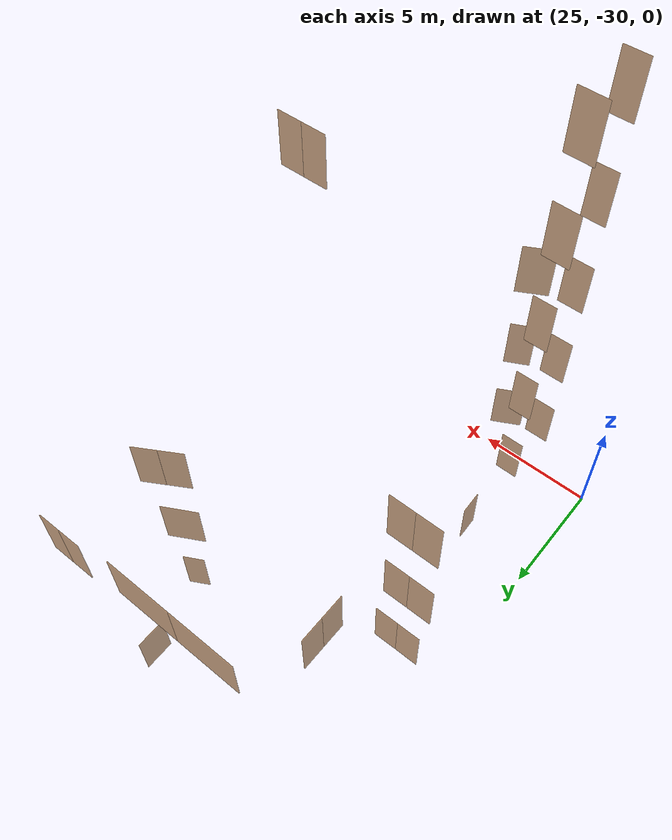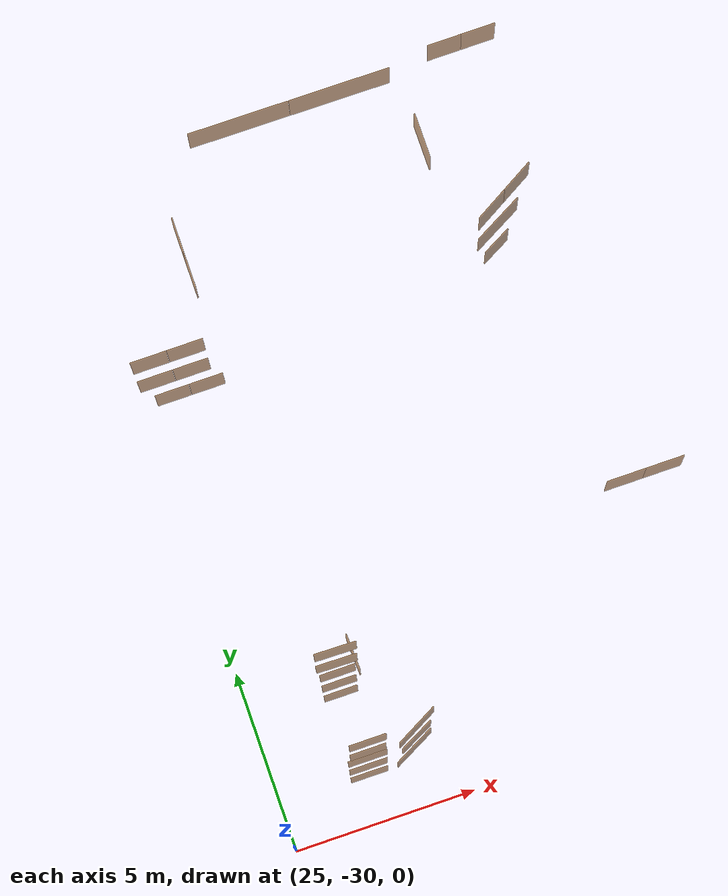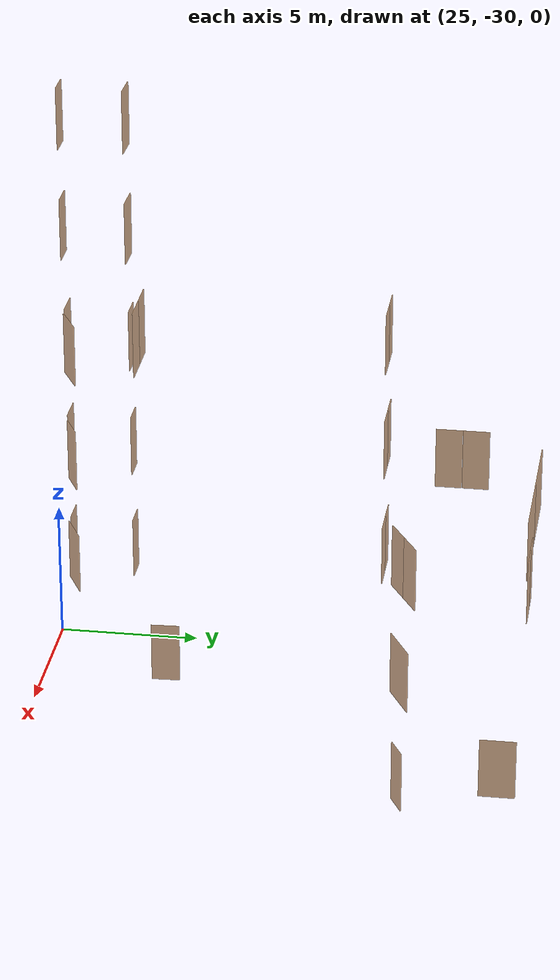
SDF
<sdf version="1.7">
 <world name="sim_world">
  <model name="Snull1">
   <pose>34.31579733412984 -13.190942015457559 0.0 0 0 -1.5647744371355659</pose>
   <link name="right">
    <pose>0 0 1.11 0 0 0</pose>
    <visual name="right_visual">
     <geometry><box><size>1.254855103408931 0.03 2.2</size></box></geometry>
     <material>
      <ambient>0.5 0.25 0 0.6</ambient>
      <diffuse>0.5 0.25 0 0.6</diffuse>
      <pbr><metal><metalness>0.0</metalness></metal></pbr>
     </material>
    </visual>
    <collision name="right_collision">
     <geometry><box><size>1.254855103408931 0.03 2.2</size></box></geometry>
     <surface><contact><collide_bitmask>0x02</collide_bitmask></contact></surface>
    </collision>
    <inertial>
     <mass>50.0</mass>
     <inertia><ixx>20.17041666666667</ixx><iyy>26.72775554396433</iyy><izz>6.564838877297662</izz></inertia>
    </inertial>
   </link>
   <joint name="right_joint" type="revolute">
    <parent>world</parent>
    <child>right</child>
    <axis><xyz>0 0 1</xyz><limit><lower>0</lower><upper>1.57</upper></limit></axis>
    <pose>0.6324275517044655 0 0 0 0 0</pose>
   </joint>
   <plugin name="register_component" filename="libregister_component.so">
    <component name="Door">
     <v_max_door>0.5</v_max_door>
     <a_max_door>0.3</a_max_door>
     <a_nom_door>0.15</a_nom_door>
     <dx_min_door>0.01</dx_min_door>
     <f_max_door>500.0</f_max_door>
     <ros_interface>true</ros_interface>
     <door name="Snull1" type="SwingDoor" left_joint_name="empty_joint" right_joint_name="right_joint"/>
    </component>
   </plugin>
  </model>
  <model name="Snull10">
   <pose>35.266232311540875 -16.49999999999999 0.0 0 0 -2.654102844831569</pose>
   <link name="right">
    <pose>0 0 1.11 0 0 0</pose>
    <visual name="right_visual">
     <geometry><box><size>0.8774159202349445 0.03 2.2</size></box></geometry>
     <material>
      <ambient>0.5 0.25 0 0.6</ambient>
      <diffuse>0.5 0.25 0 0.6</diffuse>
      <pbr><metal><metalness>0.0</metalness></metal></pbr>
     </material>
    </visual>
    <collision name="right_collision">
     <geometry><box><size>0.8774159202349445 0.03 2.2</size></box></geometry>
     <surface><contact><collide_bitmask>0x02</collide_bitmask></contact></surface>
    </collision>
    <inertial>
     <mass>50.0</mass>
     <inertia><ixx>20.17041666666667</ixx><iyy>23.374411237840565</iyy><izz>3.211494571173894</izz></inertia>
    </inertial>
   </link>
   <joint name="right_joint" type="revolute">
    <parent>world</parent>
    <child>right</child>
    <axis><xyz>0 0 -1</xyz><limit><lower>0</lower><upper>1.57</upper></limit></axis>
    <pose>0.44370796011747227 0 0 0 0 0</pose>
   </joint>
   <plugin name="register_component" filename="libregister_component.so">
    <component name="Door">
     <v_max_door>0.5</v_max_door>
     <a_max_door>0.3</a_max_door>
     <a_nom_door>0.15</a_nom_door>
     <dx_min_door>0.01</dx_min_door>
     <f_max_door>500.0</f_max_door>
     <ros_interface>true</ros_interface>
     <door name="Snull10" type="SwingDoor" left_joint_name="empty_joint" right_joint_name="right_joint"/>
    </component>
   </plugin>
  </model>
  <model name="Snull13">
   <pose>28.110629877160868 -25.59315610648544 0.0 0 0 -1.5295418897094035</pose>
   <link name="right">
    <pose>0 0 1.11 0 0 0</pose>
    <visual name="right_visual">
     <geometry><box><size>1.0111802562463839 0.03 2.2</size></box></geometry>
     <material>
      <ambient>0.5 0.25 0 0.6</ambient>
      <diffuse>0.5 0.25 0 0.6</diffuse>
      <pbr><metal><metalness>0.0</metalness></metal></pbr>
     </material>
    </visual>
    <collision name="right_collision">
     <geometry><box><size>1.0111802562463839 0.03 2.2</size></box></geometry>
     <surface><contact><collide_bitmask>0x02</collide_bitmask></contact></surface>
    </collision>
    <inertial>
     <mass>50.0</mass>
     <inertia><ixx>20.17041666666667</ixx><iyy>24.4270229609271</iyy><izz>4.2641062942604275</izz></inertia>
    </inertial>
   </link>
   <joint name="right_joint" type="revolute">
    <parent>world</parent>
    <child>right</child>
    <axis><xyz>0 0 -1</xyz><limit><lower>0</lower><upper>1.57</upper></limit></axis>
    <pose>0.5105901281231919 0 0 0 0 0</pose>
   </joint>
   <plugin name="register_component" filename="libregister_component.so">
    <component name="Door">
     <v_max_door>0.5</v_max_door>
     <a_max_door>0.3</a_max_door>
     <a_nom_door>0.15</a_nom_door>
     <dx_min_door>0.01</dx_min_door>
     <f_max_door>500.0</f_max_door>
     <ros_interface>true</ros_interface>
     <door name="Snull13" type="SwingDoor" left_joint_name="empty_joint" right_joint_name="right_joint"/>
    </component>
   </plugin>
  </model>
  <model name="0null10">
   <pose>35.248963895008 -16.471735802561312 4.0 0 0 -2.6490270736152604</pose>
   <link name="right">
    <pose>0 0 1.11 0 0 0</pose>
    <visual name="right_visual">
     <geometry><box><size>1.4880229338693765 0.03 2.2</size></box></geometry>
     <material>
      <ambient>0.5 0.25 0 0.6</ambient>
      <diffuse>0.5 0.25 0 0.6</diffuse>
      <pbr><metal><metalness>0.0</metalness></metal></pbr>
     </material>
    </visual>
    <collision name="right_collision">
     <geometry><box><size>1.4880229338693765 0.03 2.2</size></box></geometry>
     <surface><contact><collide_bitmask>0x02</collide_bitmask></contact></surface>
    </collision>
    <inertial>
     <mass>50.0</mass>
     <inertia><ixx>20.17041666666667</ixx><iyy>29.39255104883845</iyy><izz>9.22963438217178</izz></inertia>
    </inertial>
   </link>
   <joint name="right_joint" type="revolute">
    <parent>world</parent>
    <child>right</child>
    <axis><xyz>0 0 -1</xyz><limit><lower>0</lower><upper>1.57</upper></limit></axis>
    <pose>0.7490114669346882 0 0 0 0 0</pose>
   </joint>
   <plugin name="register_component" filename="libregister_component.so">
    <component name="Door">
     <v_max_door>0.5</v_max_door>
     <a_max_door>0.3</a_max_door>
     <a_nom_door>0.15</a_nom_door>
     <dx_min_door>0.01</dx_min_door>
     <f_max_door>500.0</f_max_door>
     <ros_interface>true</ros_interface>
     <door name="0null10" type="SwingDoor" left_joint_name="empty_joint" right_joint_name="right_joint"/>
    </component>
   </plugin>
  </model>
  <model name="0null21">
   <pose>26.287103759847646 -17.968599484747777 4.0 0 0 0.0</pose>
   <link name="right">
    <pose>0.466013889407459 0 1.11 0 0 0</pose>
    <visual name="right_visual">
     <geometry><box><size>0.922027778814918 0.03 2.2</size></box></geometry>
     <material>
      <ambient>0.5 0.25 0 0.6</ambient>
      <diffuse>0.5 0.25 0 0.6</diffuse>
      <pbr><metal><metalness>0.0</metalness></metal></pbr>
     </material>
    </visual>
    <collision name="right_collision">
     <geometry><box><size>0.922027778814918 0.03 2.2</size></box></geometry>
     <surface><contact><collide_bitmask>0x02</collide_bitmask></contact></surface>
    </collision>
    <inertial>
     <mass>50.0</mass>
     <inertia><ixx>20.17041666666667</ixx><iyy>23.70889677044322</iyy><izz>3.545980103776548</izz></inertia>
    </inertial>
   </link>
   <joint name="right_joint" type="revolute">
    <parent>world</parent>
    <child>right</child>
    <axis><xyz>0 0 -1</xyz><limit><lower>0</lower><upper>1.57</upper></limit></axis>
    <pose>0.466013889407459 0 0 0 0 0</pose>
   </joint>
   <link name="left">
    <pose>-0.466013889407459 0 1.11 0 0 0</pose>
    <visual name="left_visual">
     <geometry><box><size>0.922027778814918 0.03 2.2</size></box></geometry>
     <material>
      <ambient>0.5 0.25 0 0.6</ambient>
      <diffuse>0.5 0.25 0 0.6</diffuse>
      <pbr><metal><metalness>0.0</metalness></metal></pbr>
     </material>
    </visual>
    <collision name="left_collision">
     <geometry><box><size>0.922027778814918 0.03 2.2</size></box></geometry>
     <surface><contact><collide_bitmask>0x02</collide_bitmask></contact></surface>
    </collision>
    <inertial>
     <mass>50.0</mass>
     <inertia><ixx>20.17041666666667</ixx><iyy>23.70889677044322</iyy><izz>3.545980103776548</izz></inertia>
    </inertial>
   </link>
   <joint name="left_joint" type="revolute">
    <parent>world</parent>
    <child>left</child>
    <axis><xyz>0 0 -1</xyz><limit><lower>-1.57</lower><upper>0</upper></limit></axis>
    <pose>-0.466013889407459 0 0 0 0 0</pose>
   </joint>
   <plugin name="register_component" filename="libregister_component.so">
    <component name="Door">
     <v_max_door>0.5</v_max_door>
     <a_max_door>0.3</a_max_door>
     <a_nom_door>0.15</a_nom_door>
     <dx_min_door>0.01</dx_min_door>
     <f_max_door>500.0</f_max_door>
     <ros_interface>true</ros_interface>
     <door name="0null21" type="DoubleSwingDoor" left_joint_name="left_joint" right_joint_name="right_joint"/>
    </component>
   </plugin>
  </model>
  <model name="0null25">
   <pose>27.425120412201753 -26.721129074412858 4.0 0 0 0.0</pose>
   <link name="right">
    <pose>0 0 1.11 0 0 0</pose>
    <visual name="right_visual">
     <geometry><box><size>0.9119280887129884 0.03 2.2</size></box></geometry>
     <material>
      <ambient>0.5 0.25 0 0.6</ambient>
      <diffuse>0.5 0.25 0 0.6</diffuse>
      <pbr><metal><metalness>0.0</metalness></metal></pbr>
     </material>
    </visual>
    <collision name="right_collision">
     <geometry><box><size>0.9119280887129884 0.03 2.2</size></box></geometry>
     <surface><contact><collide_bitmask>0x02</collide_bitmask></contact></surface>
    </collision>
    <inertial>
     <mass>50.0</mass>
     <inertia><ixx>20.17041666666667</ixx><iyy>23.631720162432188</iyy><izz>3.468803495765517</izz></inertia>
    </inertial>
   </link>
   <joint name="right_joint" type="revolute">
    <parent>world</parent>
    <child>right</child>
    <axis><xyz>0 0 -1</xyz><limit><lower>0</lower><upper>1.57</upper></limit></axis>
    <pose>0.4609640443564942 0 0 0 0 0</pose>
   </joint>
   <plugin name="register_component" filename="libregister_component.so">
    <component name="Door">
     <v_max_door>0.5</v_max_door>
     <a_max_door>0.3</a_max_door>
     <a_nom_door>0.15</a_nom_door>
     <dx_min_door>0.01</dx_min_door>
     <f_max_door>500.0</f_max_door>
     <ros_interface>true</ros_interface>
     <door name="0null25" type="SwingDoor" left_joint_name="empty_joint" right_joint_name="right_joint"/>
    </component>
   </plugin>
  </model>
  <model name="0null26">
   <pose>27.4428928798118 -28.9351080909532 4.0 0 0 0.0</pose>
   <link name="right">
    <pose>0 0 1.11 0 0 0</pose>
    <visual name="right_visual">
     <geometry><box><size>1.0012384721651786 0.03 2.2</size></box></geometry>
     <material>
      <ambient>0.5 0.25 0 0.6</ambient>
      <diffuse>0.5 0.25 0 0.6</diffuse>
      <pbr><metal><metalness>0.0</metalness></metal></pbr>
     </material>
    </visual>
    <collision name="right_collision">
     <geometry><box><size>1.0012384721651786 0.03 2.2</size></box></geometry>
     <surface><contact><collide_bitmask>0x02</collide_bitmask></contact></surface>
    </collision>
    <inertial>
     <mass>50.0</mass>
     <inertia><ixx>20.17041666666667</ixx><iyy>24.34366032559859</iyy><izz>4.180743658931921</izz></inertia>
    </inertial>
   </link>
   <joint name="right_joint" type="revolute">
    <parent>world</parent>
    <child>right</child>
    <axis><xyz>0 0 1</xyz><limit><lower>0</lower><upper>1.57</upper></limit></axis>
    <pose>0.5056192360825893 0 0 0 0 0</pose>
   </joint>
   <plugin name="register_component" filename="libregister_component.so">
    <component name="Door">
     <v_max_door>0.5</v_max_door>
     <a_max_door>0.3</a_max_door>
     <a_nom_door>0.15</a_nom_door>
     <dx_min_door>0.01</dx_min_door>
     <f_max_door>500.0</f_max_door>
     <ros_interface>true</ros_interface>
     <door name="0null26" type="SwingDoor" left_joint_name="empty_joint" right_joint_name="right_joint"/>
    </component>
   </plugin>
  </model>
  <model name="nullb1">
   <pose>28.75736474629427 -28.66306985774557 4.0 0 0 0.4795310712493235</pose>
   <link name="right">
    <pose>0 0 1.11 0 0 0</pose>
    <visual name="right_visual">
     <geometry><box><size>1.2273863627023087 0.03 2.2</size></box></geometry>
     <material>
      <ambient>0.5 0.25 0 0.6</ambient>
      <diffuse>0.5 0.25 0 0.6</diffuse>
      <pbr><metal><metalness>0.0</metalness></metal></pbr>
     </material>
    </visual>
    <collision name="right_collision">
     <geometry><box><size>1.2273863627023087 0.03 2.2</size></box></geometry>
     <surface><contact><collide_bitmask>0x02</collide_bitmask></contact></surface>
    </collision>
    <inertial>
     <mass>50.0</mass>
     <inertia><ixx>20.17041666666667</ixx><iyy>26.443655347281688</iyy><izz>6.280738680615014</izz></inertia>
    </inertial>
   </link>
   <joint name="right_joint" type="revolute">
    <parent>world</parent>
    <child>right</child>
    <axis><xyz>0 0 -1</xyz><limit><lower>0</lower><upper>1.57</upper></limit></axis>
    <pose>0.6186931813511544 0 0 0 0 0</pose>
   </joint>
   <plugin name="register_component" filename="libregister_component.so">
    <component name="Door">
     <v_max_door>0.5</v_max_door>
     <a_max_door>0.3</a_max_door>
     <a_nom_door>0.15</a_nom_door>
     <dx_min_door>0.01</dx_min_door>
     <f_max_door>500.0</f_max_door>
     <ros_interface>true</ros_interface>
     <door name="nullb1" type="SwingDoor" left_joint_name="empty_joint" right_joint_name="right_joint"/>
    </component>
   </plugin>
  </model>
  <model name="1null10">
   <pose>35.38498301161182 -16.359892469103524 8.0 0 0 -2.6214980729820914</pose>
   <link name="right">
    <pose>0.47606565224283276 0 1.11 0 0 0</pose>
    <visual name="right_visual">
     <geometry><box><size>0.9421313044856655 0.03 2.2</size></box></geometry>
     <material>
      <ambient>0.5 0.25 0 0.6</ambient>
      <diffuse>0.5 0.25 0 0.6</diffuse>
      <pbr><metal><metalness>0.0</metalness></metal></pbr>
     </material>
    </visual>
    <collision name="right_collision">
     <geometry><box><size>0.9421313044856655 0.03 2.2</size></box></geometry>
     <surface><contact><collide_bitmask>0x02</collide_bitmask></contact></surface>
    </collision>
    <inertial>
     <mass>50.0</mass>
     <inertia><ixx>20.17041666666667</ixx><iyy>23.865047478716097</iyy><izz>3.7021308120494245</izz></inertia>
    </inertial>
   </link>
   <joint name="right_joint" type="revolute">
    <parent>world</parent>
    <child>right</child>
    <axis><xyz>0 0 1</xyz><limit><lower>0</lower><upper>1.57</upper></limit></axis>
    <pose>0.47606565224283276 0 0 0 0 0</pose>
   </joint>
   <link name="left">
    <pose>-0.47606565224283276 0 1.11 0 0 0</pose>
    <visual name="left_visual">
     <geometry><box><size>0.9421313044856655 0.03 2.2</size></box></geometry>
     <material>
      <ambient>0.5 0.25 0 0.6</ambient>
      <diffuse>0.5 0.25 0 0.6</diffuse>
      <pbr><metal><metalness>0.0</metalness></metal></pbr>
     </material>
    </visual>
    <collision name="left_collision">
     <geometry><box><size>0.9421313044856655 0.03 2.2</size></box></geometry>
     <surface><contact><collide_bitmask>0x02</collide_bitmask></contact></surface>
    </collision>
    <inertial>
     <mass>50.0</mass>
     <inertia><ixx>20.17041666666667</ixx><iyy>23.865047478716097</iyy><izz>3.7021308120494245</izz></inertia>
    </inertial>
   </link>
   <joint name="left_joint" type="revolute">
    <parent>world</parent>
    <child>left</child>
    <axis><xyz>0 0 1</xyz><limit><lower>-1.57</lower><upper>0</upper></limit></axis>
    <pose>-0.47606565224283276 0 0 0 0 0</pose>
   </joint>
   <plugin name="register_component" filename="libregister_component.so">
    <component name="Door">
     <v_max_door>0.5</v_max_door>
     <a_max_door>0.3</a_max_door>
     <a_nom_door>0.15</a_nom_door>
     <dx_min_door>0.01</dx_min_door>
     <f_max_door>500.0</f_max_door>
     <ros_interface>true</ros_interface>
     <door name="1null10" type="DoubleSwingDoor" left_joint_name="left_joint" right_joint_name="right_joint"/>
    </component>
   </plugin>
  </model>
  <model name="1null21">
   <pose>26.004480454019323 -17.971362431393036 8.0 0 0 0.0</pose>
   <link name="right">
    <pose>0.47388268677892587 0 1.11 0 0 0</pose>
    <visual name="right_visual">
     <geometry><box><size>0.9377653735578517 0.03 2.2</size></box></geometry>
     <material>
      <ambient>0.5 0.25 0 0.6</ambient>
      <diffuse>0.5 0.25 0 0.6</diffuse>
      <pbr><metal><metalness>0.0</metalness></metal></pbr>
     </material>
    </visual>
    <collision name="right_collision">
     <geometry><box><size>0.9377653735578517 0.03 2.2</size></box></geometry>
     <surface><contact><collide_bitmask>0x02</collide_bitmask></contact></surface>
    </collision>
    <inertial>
     <mass>50.0</mass>
     <inertia><ixx>20.17041666666667</ixx><iyy>23.83084956601708</iyy><izz>3.6679328993504052</izz></inertia>
    </inertial>
   </link>
   <joint name="right_joint" type="revolute">
    <parent>world</parent>
    <child>right</child>
    <axis><xyz>0 0 -1</xyz><limit><lower>0</lower><upper>1.57</upper></limit></axis>
    <pose>0.47388268677892587 0 0 0 0 0</pose>
   </joint>
   <link name="left">
    <pose>-0.47388268677892587 0 1.11 0 0 0</pose>
    <visual name="left_visual">
     <geometry><box><size>0.9377653735578517 0.03 2.2</size></box></geometry>
     <material>
      <ambient>0.5 0.25 0 0.6</ambient>
      <diffuse>0.5 0.25 0 0.6</diffuse>
      <pbr><metal><metalness>0.0</metalness></metal></pbr>
     </material>
    </visual>
    <collision name="left_collision">
     <geometry><box><size>0.9377653735578517 0.03 2.2</size></box></geometry>
     <surface><contact><collide_bitmask>0x02</collide_bitmask></contact></surface>
    </collision>
    <inertial>
     <mass>50.0</mass>
     <inertia><ixx>20.17041666666667</ixx><iyy>23.83084956601708</iyy><izz>3.6679328993504052</izz></inertia>
    </inertial>
   </link>
   <joint name="left_joint" type="revolute">
    <parent>world</parent>
    <child>left</child>
    <axis><xyz>0 0 -1</xyz><limit><lower>-1.57</lower><upper>0</upper></limit></axis>
    <pose>-0.47388268677892587 0 0 0 0 0</pose>
   </joint>
   <plugin name="register_component" filename="libregister_component.so">
    <component name="Door">
     <v_max_door>0.5</v_max_door>
     <a_max_door>0.3</a_max_door>
     <a_nom_door>0.15</a_nom_door>
     <dx_min_door>0.01</dx_min_door>
     <f_max_door>500.0</f_max_door>
     <ros_interface>true</ros_interface>
     <door name="1null21" type="DoubleSwingDoor" left_joint_name="left_joint" right_joint_name="right_joint"/>
    </component>
   </plugin>
  </model>
  <model name="1null25">
   <pose>27.425120412201753 -26.721129074412858 8.0 0 0 0.0</pose>
   <link name="right">
    <pose>0 0 1.11 0 0 0</pose>
    <visual name="right_visual">
     <geometry><box><size>0.9119280887129884 0.03 2.2</size></box></geometry>
     <material>
      <ambient>0.5 0.25 0 0.6</ambient>
      <diffuse>0.5 0.25 0 0.6</diffuse>
      <pbr><metal><metalness>0.0</metalness></metal></pbr>
     </material>
    </visual>
    <collision name="right_collision">
     <geometry><box><size>0.9119280887129884 0.03 2.2</size></box></geometry>
     <surface><contact><collide_bitmask>0x02</collide_bitmask></contact></surface>
    </collision>
    <inertial>
     <mass>50.0</mass>
     <inertia><ixx>20.17041666666667</ixx><iyy>23.631720162432188</iyy><izz>3.468803495765517</izz></inertia>
    </inertial>
   </link>
   <joint name="right_joint" type="revolute">
    <parent>world</parent>
    <child>right</child>
    <axis><xyz>0 0 -1</xyz><limit><lower>0</lower><upper>1.57</upper></limit></axis>
    <pose>0.4609640443564942 0 0 0 0 0</pose>
   </joint>
   <plugin name="register_component" filename="libregister_component.so">
    <component name="Door">
     <v_max_door>0.5</v_max_door>
     <a_max_door>0.3</a_max_door>
     <a_nom_door>0.15</a_nom_door>
     <dx_min_door>0.01</dx_min_door>
     <f_max_door>500.0</f_max_door>
     <ros_interface>true</ros_interface>
     <door name="1null25" type="SwingDoor" left_joint_name="empty_joint" right_joint_name="right_joint"/>
    </component>
   </plugin>
  </model>
  <model name="1null26">
   <pose>27.4428928798118 -28.9351080909532 8.0 0 0 0.0</pose>
   <link name="right">
    <pose>0 0 1.11 0 0 0</pose>
    <visual name="right_visual">
     <geometry><box><size>1.0012384721651786 0.03 2.2</size></box></geometry>
     <material>
      <ambient>0.5 0.25 0 0.6</ambient>
      <diffuse>0.5 0.25 0 0.6</diffuse>
      <pbr><metal><metalness>0.0</metalness></metal></pbr>
     </material>
    </visual>
    <collision name="right_collision">
     <geometry><box><size>1.0012384721651786 0.03 2.2</size></box></geometry>
     <surface><contact><collide_bitmask>0x02</collide_bitmask></contact></surface>
    </collision>
    <inertial>
     <mass>50.0</mass>
     <inertia><ixx>20.17041666666667</ixx><iyy>24.34366032559859</iyy><izz>4.180743658931921</izz></inertia>
    </inertial>
   </link>
   <joint name="right_joint" type="revolute">
    <parent>world</parent>
    <child>right</child>
    <axis><xyz>0 0 1</xyz><limit><lower>0</lower><upper>1.57</upper></limit></axis>
    <pose>0.5056192360825893 0 0 0 0 0</pose>
   </joint>
   <plugin name="register_component" filename="libregister_component.so">
    <component name="Door">
     <v_max_door>0.5</v_max_door>
     <a_max_door>0.3</a_max_door>
     <a_nom_door>0.15</a_nom_door>
     <dx_min_door>0.01</dx_min_door>
     <f_max_door>500.0</f_max_door>
     <ros_interface>true</ros_interface>
     <door name="1null26" type="SwingDoor" left_joint_name="empty_joint" right_joint_name="right_joint"/>
    </component>
   </plugin>
  </model>
  <model name="1null76">
   <pose>30.970223649329782 -12.445039764029413 8.0 0 0 3.1330323464274543</pose>
   <link name="right">
    <pose>1.346677799555242 0 1.11 0 0 0</pose>
    <visual name="right_visual">
     <geometry><box><size>2.683355599110484 0.03 2.2</size></box></geometry>
     <material>
      <ambient>0.5 0.25 0 0.6</ambient>
      <diffuse>0.5 0.25 0 0.6</diffuse>
      <pbr><metal><metalness>0.0</metalness></metal></pbr>
     </material>
    </visual>
    <collision name="right_collision">
     <geometry><box><size>2.683355599110484 0.03 2.2</size></box></geometry>
     <surface><contact><collide_bitmask>0x02</collide_bitmask></contact></surface>
    </collision>
    <inertial>
     <mass>50.0</mass>
     <inertia><ixx>20.17041666666667</ixx><iyy>50.16832196365661</iyy><izz>30.005405296989938</izz></inertia>
    </inertial>
   </link>
   <joint name="right_joint" type="prismatic">
    <parent>world</parent>
    <child>right</child>
    <axis>
     <xyz>1 0 0</xyz>
     <limit><lower>0.0</lower><upper>2.693355599110484</upper><effort>500.0</effort></limit>
    </axis>
   </joint>
   <link name="left">
    <pose>-1.346677799555242 0 1.11 0 0 0</pose>
    <visual name="left_visual">
     <geometry><box><size>2.683355599110484 0.03 2.2</size></box></geometry>
     <material>
      <ambient>0.5 0.25 0 0.6</ambient>
      <diffuse>0.5 0.25 0 0.6</diffuse>
      <pbr><metal><metalness>0.0</metalness></metal></pbr>
     </material>
    </visual>
    <collision name="left_collision">
     <geometry><box><size>2.683355599110484 0.03 2.2</size></box></geometry>
     <surface><contact><collide_bitmask>0x02</collide_bitmask></contact></surface>
    </collision>
    <inertial>
     <mass>50.0</mass>
     <inertia><ixx>20.17041666666667</ixx><iyy>50.16832196365661</iyy><izz>30.005405296989938</izz></inertia>
    </inertial>
   </link>
   <joint name="left_joint" type="prismatic">
    <parent>world</parent>
    <child>left</child>
    <axis>
     <xyz>1 0 0</xyz>
     <limit><lower>-2.693355599110484</lower><upper>0.0</upper><effort>500.0</effort></limit>
    </axis>
   </joint>
   <plugin name="register_component" filename="libregister_component.so">
    <component name="Door">
     <v_max_door>0.2</v_max_door>
     <a_max_door>0.2</a_max_door>
     <a_nom_door>0.08</a_nom_door>
     <dx_min_door>0.001</dx_min_door>
     <f_max_door>100.0</f_max_door>
     <ros_interface>true</ros_interface>
     <door name="1null76" type="DoubleSlidingDoor" left_joint_name="left_joint" right_joint_name="right_joint"/>
    </component>
   </plugin>
  </model>
  <model name="1ull77">
   <pose>35.65018855243996 -12.253967068662948 8.0 0 0 0.0</pose>
   <link name="right">
    <pose>0.4535152895493404 0 1.11 0 0 0</pose>
    <visual name="right_visual">
     <geometry><box><size>0.8970305790986808 0.03 2.2</size></box></geometry>
     <material>
      <ambient>0.5 0.25 0 0.6</ambient>
      <diffuse>0.5 0.25 0 0.6</diffuse>
      <pbr><metal><metalness>0.0</metalness></metal></pbr>
     </material>
    </visual>
    <collision name="right_collision">
     <geometry><box><size>0.8970305790986808 0.03 2.2</size></box></geometry>
     <surface><contact><collide_bitmask>0x02</collide_bitmask></contact></surface>
    </collision>
    <inertial>
     <mass>50.0</mass>
     <inertia><ixx>20.17041666666667</ixx><iyy>23.519432749325482</iyy><izz>3.356516082658811</izz></inertia>
    </inertial>
   </link>
   <joint name="right_joint" type="revolute">
    <parent>world</parent>
    <child>right</child>
    <axis><xyz>0 0 -1</xyz><limit><lower>0</lower><upper>1.57</upper></limit></axis>
    <pose>0.4535152895493404 0 0 0 0 0</pose>
   </joint>
   <link name="left">
    <pose>-0.4535152895493404 0 1.11 0 0 0</pose>
    <visual name="left_visual">
     <geometry><box><size>0.8970305790986808 0.03 2.2</size></box></geometry>
     <material>
      <ambient>0.5 0.25 0 0.6</ambient>
      <diffuse>0.5 0.25 0 0.6</diffuse>
      <pbr><metal><metalness>0.0</metalness></metal></pbr>
     </material>
    </visual>
    <collision name="left_collision">
     <geometry><box><size>0.8970305790986808 0.03 2.2</size></box></geometry>
     <surface><contact><collide_bitmask>0x02</collide_bitmask></contact></surface>
    </collision>
    <inertial>
     <mass>50.0</mass>
     <inertia><ixx>20.17041666666667</ixx><iyy>23.519432749325482</iyy><izz>3.356516082658811</izz></inertia>
    </inertial>
   </link>
   <joint name="left_joint" type="revolute">
    <parent>world</parent>
    <child>left</child>
    <axis><xyz>0 0 -1</xyz><limit><lower>-1.57</lower><upper>0</upper></limit></axis>
    <pose>-0.4535152895493404 0 0 0 0 0</pose>
   </joint>
   <plugin name="register_component" filename="libregister_component.so">
    <component name="Door">
     <v_max_door>0.5</v_max_door>
     <a_max_door>0.3</a_max_door>
     <a_nom_door>0.15</a_nom_door>
     <dx_min_door>0.01</dx_min_door>
     <f_max_door>500.0</f_max_door>
     <ros_interface>true</ros_interface>
     <door name="1ull77" type="DoubleSwingDoor" left_joint_name="left_joint" right_joint_name="right_joint"/>
    </component>
   </plugin>
  </model>
  <model name="1null85">
   <pose>27.22805510958442 -15.22516148303027 8.0 0 0 -1.5707963267948966</pose>
   <link name="right">
    <pose>0.4684221334428549 0 1.11 0 0 0</pose>
    <visual name="right_visual">
     <geometry><box><size>0.9268442668857098 0.03 2.2</size></box></geometry>
     <material>
      <ambient>0.5 0.25 0 0.6</ambient>
      <diffuse>0.5 0.25 0 0.6</diffuse>
      <pbr><metal><metalness>0.0</metalness></metal></pbr>
     </material>
    </visual>
    <collision name="right_collision">
     <geometry><box><size>0.9268442668857098 0.03 2.2</size></box></geometry>
     <surface><contact><collide_bitmask>0x02</collide_bitmask></contact></surface>
    </collision>
    <inertial>
     <mass>50.0</mass>
     <inertia><ixx>20.17041666666667</ixx><iyy>23.746001229412126</iyy><izz>3.5830845627454537</izz></inertia>
    </inertial>
   </link>
   <joint name="right_joint" type="revolute">
    <parent>world</parent>
    <child>right</child>
    <axis><xyz>0 0 -1</xyz><limit><lower>0</lower><upper>1.57</upper></limit></axis>
    <pose>0.4684221334428549 0 0 0 0 0</pose>
   </joint>
   <link name="left">
    <pose>-0.4684221334428549 0 1.11 0 0 0</pose>
    <visual name="left_visual">
     <geometry><box><size>0.9268442668857098 0.03 2.2</size></box></geometry>
     <material>
      <ambient>0.5 0.25 0 0.6</ambient>
      <diffuse>0.5 0.25 0 0.6</diffuse>
      <pbr><metal><metalness>0.0</metalness></metal></pbr>
     </material>
    </visual>
    <collision name="left_collision">
     <geometry><box><size>0.9268442668857098 0.03 2.2</size></box></geometry>
     <surface><contact><collide_bitmask>0x02</collide_bitmask></contact></surface>
    </collision>
    <inertial>
     <mass>50.0</mass>
     <inertia><ixx>20.17041666666667</ixx><iyy>23.746001229412126</iyy><izz>3.5830845627454537</izz></inertia>
    </inertial>
   </link>
   <joint name="left_joint" type="revolute">
    <parent>world</parent>
    <child>left</child>
    <axis><xyz>0 0 -1</xyz><limit><lower>-1.57</lower><upper>0</upper></limit></axis>
    <pose>-0.4684221334428549 0 0 0 0 0</pose>
   </joint>
   <plugin name="register_component" filename="libregister_component.so">
    <component name="Door">
     <v_max_door>0.5</v_max_door>
     <a_max_door>0.3</a_max_door>
     <a_nom_door>0.15</a_nom_door>
     <dx_min_door>0.01</dx_min_door>
     <f_max_door>500.0</f_max_door>
     <ros_interface>true</ros_interface>
     <door name="1null85" type="DoubleSwingDoor" left_joint_name="left_joint" right_joint_name="right_joint"/>
    </component>
   </plugin>
  </model>
  <model name="nullb3">
   <pose>28.82783855430682 -28.627487585408637 8.0 0 0 0.4724807734734819</pose>
   <link name="right">
    <pose>0 0 1.11 0 0 0</pose>
    <visual name="right_visual">
     <geometry><box><size>0.9956728817609504 0.03 2.2</size></box></geometry>
     <material>
      <ambient>0.5 0.25 0 0.6</ambient>
      <diffuse>0.5 0.25 0 0.6</diffuse>
      <pbr><metal><metalness>0.0</metalness></metal></pbr>
     </material>
    </visual>
    <collision name="right_collision">
     <geometry><box><size>0.9956728817609504 0.03 2.2</size></box></geometry>
     <surface><contact><collide_bitmask>0x02</collide_bitmask></contact></surface>
    </collision>
    <inertial>
     <mass>50.0</mass>
     <inertia><ixx>20.17041666666667</ixx><iyy>24.297352031142317</iyy><izz>4.134435364475648</izz></inertia>
    </inertial>
   </link>
   <joint name="right_joint" type="revolute">
    <parent>world</parent>
    <child>right</child>
    <axis><xyz>0 0 -1</xyz><limit><lower>0</lower><upper>1.57</upper></limit></axis>
    <pose>0.5028364408804752 0 0 0 0 0</pose>
   </joint>
   <plugin name="register_component" filename="libregister_component.so">
    <component name="Door">
     <v_max_door>0.5</v_max_door>
     <a_max_door>0.3</a_max_door>
     <a_nom_door>0.15</a_nom_door>
     <dx_min_door>0.01</dx_min_door>
     <f_max_door>500.0</f_max_door>
     <ros_interface>true</ros_interface>
     <door name="nullb3" type="SwingDoor" left_joint_name="empty_joint" right_joint_name="right_joint"/>
    </component>
   </plugin>
  </model>
  <model name="2null21">
   <pose>26.004480454019323 -17.971362431393036 12.0 0 0 0.0</pose>
   <link name="right">
    <pose>0.47388268677892587 0 1.11 0 0 0</pose>
    <visual name="right_visual">
     <geometry><box><size>0.9377653735578517 0.03 2.2</size></box></geometry>
     <material>
      <ambient>0.5 0.25 0 0.6</ambient>
      <diffuse>0.5 0.25 0 0.6</diffuse>
      <pbr><metal><metalness>0.0</metalness></metal></pbr>
     </material>
    </visual>
    <collision name="right_collision">
     <geometry><box><size>0.9377653735578517 0.03 2.2</size></box></geometry>
     <surface><contact><collide_bitmask>0x02</collide_bitmask></contact></surface>
    </collision>
    <inertial>
     <mass>50.0</mass>
     <inertia><ixx>20.17041666666667</ixx><iyy>23.83084956601708</iyy><izz>3.6679328993504052</izz></inertia>
    </inertial>
   </link>
   <joint name="right_joint" type="revolute">
    <parent>world</parent>
    <child>right</child>
    <axis><xyz>0 0 -1</xyz><limit><lower>0</lower><upper>1.57</upper></limit></axis>
    <pose>0.47388268677892587 0 0 0 0 0</pose>
   </joint>
   <link name="left">
    <pose>-0.47388268677892587 0 1.11 0 0 0</pose>
    <visual name="left_visual">
     <geometry><box><size>0.9377653735578517 0.03 2.2</size></box></geometry>
     <material>
      <ambient>0.5 0.25 0 0.6</ambient>
      <diffuse>0.5 0.25 0 0.6</diffuse>
      <pbr><metal><metalness>0.0</metalness></metal></pbr>
     </material>
    </visual>
    <collision name="left_collision">
     <geometry><box><size>0.9377653735578517 0.03 2.2</size></box></geometry>
     <surface><contact><collide_bitmask>0x02</collide_bitmask></contact></surface>
    </collision>
    <inertial>
     <mass>50.0</mass>
     <inertia><ixx>20.17041666666667</ixx><iyy>23.83084956601708</iyy><izz>3.6679328993504052</izz></inertia>
    </inertial>
   </link>
   <joint name="left_joint" type="revolute">
    <parent>world</parent>
    <child>left</child>
    <axis><xyz>0 0 -1</xyz><limit><lower>-1.57</lower><upper>0</upper></limit></axis>
    <pose>-0.47388268677892587 0 0 0 0 0</pose>
   </joint>
   <plugin name="register_component" filename="libregister_component.so">
    <component name="Door">
     <v_max_door>0.5</v_max_door>
     <a_max_door>0.3</a_max_door>
     <a_nom_door>0.15</a_nom_door>
     <dx_min_door>0.01</dx_min_door>
     <f_max_door>500.0</f_max_door>
     <ros_interface>true</ros_interface>
     <door name="2null21" type="DoubleSwingDoor" left_joint_name="left_joint" right_joint_name="right_joint"/>
    </component>
   </plugin>
  </model>
  <model name="2null25">
   <pose>27.425120412201753 -26.721129074412858 12.0 0 0 0.0</pose>
   <link name="right">
    <pose>0 0 1.11 0 0 0</pose>
    <visual name="right_visual">
     <geometry><box><size>0.9119280887129884 0.03 2.2</size></box></geometry>
     <material>
      <ambient>0.5 0.25 0 0.6</ambient>
      <diffuse>0.5 0.25 0 0.6</diffuse>
      <pbr><metal><metalness>0.0</metalness></metal></pbr>
     </material>
    </visual>
    <collision name="right_collision">
     <geometry><box><size>0.9119280887129884 0.03 2.2</size></box></geometry>
     <surface><contact><collide_bitmask>0x02</collide_bitmask></contact></surface>
    </collision>
    <inertial>
     <mass>50.0</mass>
     <inertia><ixx>20.17041666666667</ixx><iyy>23.631720162432188</iyy><izz>3.468803495765517</izz></inertia>
    </inertial>
   </link>
   <joint name="right_joint" type="revolute">
    <parent>world</parent>
    <child>right</child>
    <axis><xyz>0 0 -1</xyz><limit><lower>0</lower><upper>1.57</upper></limit></axis>
    <pose>0.4609640443564942 0 0 0 0 0</pose>
   </joint>
   <plugin name="register_component" filename="libregister_component.so">
    <component name="Door">
     <v_max_door>0.5</v_max_door>
     <a_max_door>0.3</a_max_door>
     <a_nom_door>0.15</a_nom_door>
     <dx_min_door>0.01</dx_min_door>
     <f_max_door>500.0</f_max_door>
     <ros_interface>true</ros_interface>
     <door name="2null25" type="SwingDoor" left_joint_name="empty_joint" right_joint_name="right_joint"/>
    </component>
   </plugin>
  </model>
  <model name="2null26">
   <pose>27.4428928798118 -28.9351080909532 12.0 0 0 0.0</pose>
   <link name="right">
    <pose>0 0 1.11 0 0 0</pose>
    <visual name="right_visual">
     <geometry><box><size>1.0012384721651786 0.03 2.2</size></box></geometry>
     <material>
      <ambient>0.5 0.25 0 0.6</ambient>
      <diffuse>0.5 0.25 0 0.6</diffuse>
      <pbr><metal><metalness>0.0</metalness></metal></pbr>
     </material>
    </visual>
    <collision name="right_collision">
     <geometry><box><size>1.0012384721651786 0.03 2.2</size></box></geometry>
     <surface><contact><collide_bitmask>0x02</collide_bitmask></contact></surface>
    </collision>
    <inertial>
     <mass>50.0</mass>
     <inertia><ixx>20.17041666666667</ixx><iyy>24.34366032559859</iyy><izz>4.180743658931921</izz></inertia>
    </inertial>
   </link>
   <joint name="right_joint" type="revolute">
    <parent>world</parent>
    <child>right</child>
    <axis><xyz>0 0 1</xyz><limit><lower>0</lower><upper>1.57</upper></limit></axis>
    <pose>0.5056192360825893 0 0 0 0 0</pose>
   </joint>
   <plugin name="register_component" filename="libregister_component.so">
    <component name="Door">
     <v_max_door>0.5</v_max_door>
     <a_max_door>0.3</a_max_door>
     <a_nom_door>0.15</a_nom_door>
     <dx_min_door>0.01</dx_min_door>
     <f_max_door>500.0</f_max_door>
     <ros_interface>true</ros_interface>
     <door name="2null26" type="SwingDoor" left_joint_name="empty_joint" right_joint_name="right_joint"/>
    </component>
   </plugin>
  </model>
  <model name="nullb4">
   <pose>28.81902699473545 -28.614475600194133 12.0 0 0 0.4921820266745037</pose>
   <link name="right">
    <pose>0 0 1.11 0 0 0</pose>
    <visual name="right_visual">
     <geometry><box><size>1.2131845446353848 0.03 2.2</size></box></geometry>
     <material>
      <ambient>0.5 0.25 0 0.6</ambient>
      <diffuse>0.5 0.25 0 0.6</diffuse>
      <pbr><metal><metalness>0.0</metalness></metal></pbr>
     </material>
    </visual>
    <collision name="right_collision">
     <geometry><box><size>1.2131845446353848 0.03 2.2</size></box></geometry>
     <surface><contact><collide_bitmask>0x02</collide_bitmask></contact></surface>
    </collision>
    <inertial>
     <mass>50.0</mass>
     <inertia><ixx>20.17041666666667</ixx><iyy>26.299236413925694</iyy><izz>6.136319747259025</izz></inertia>
    </inertial>
   </link>
   <joint name="right_joint" type="revolute">
    <parent>world</parent>
    <child>right</child>
    <axis><xyz>0 0 -1</xyz><limit><lower>0</lower><upper>1.57</upper></limit></axis>
    <pose>0.6115922723176924 0 0 0 0 0</pose>
   </joint>
   <plugin name="register_component" filename="libregister_component.so">
    <component name="Door">
     <v_max_door>0.5</v_max_door>
     <a_max_door>0.3</a_max_door>
     <a_nom_door>0.15</a_nom_door>
     <dx_min_door>0.01</dx_min_door>
     <f_max_door>500.0</f_max_door>
     <ros_interface>true</ros_interface>
     <door name="nullb4" type="SwingDoor" left_joint_name="empty_joint" right_joint_name="right_joint"/>
    </component>
   </plugin>
  </model>
  <model name="wx13null">
   <pose>35.86229219952851 -24.84380485190795 16.0 0 0 -4.194948292585065e-05</pose>
   <link name="right">
    <pose>0.4860070235862572 0 1.11 0 0 0</pose>
    <visual name="right_visual">
     <geometry><box><size>0.9620140471725144 0.03 2.2</size></box></geometry>
     <material>
      <ambient>0.5 0.25 0 0.6</ambient>
      <diffuse>0.5 0.25 0 0.6</diffuse>
      <pbr><metal><metalness>0.0</metalness></metal></pbr>
     </material>
    </visual>
    <collision name="right_collision">
     <geometry><box><size>0.9620140471725144 0.03 2.2</size></box></geometry>
     <surface><contact><collide_bitmask>0x02</collide_bitmask></contact></surface>
    </collision>
    <inertial>
     <mass>50.0</mass>
     <inertia><ixx>20.17041666666667</ixx><iyy>24.022795945655176</iyy><izz>3.8598792789885032</izz></inertia>
    </inertial>
   </link>
   <joint name="right_joint" type="revolute">
    <parent>world</parent>
    <child>right</child>
    <axis><xyz>0 0 -1</xyz><limit><lower>0</lower><upper>1.57</upper></limit></axis>
    <pose>0.4860070235862572 0 0 0 0 0</pose>
   </joint>
   <link name="left">
    <pose>-0.4860070235862572 0 1.11 0 0 0</pose>
    <visual name="left_visual">
     <geometry><box><size>0.9620140471725144 0.03 2.2</size></box></geometry>
     <material>
      <ambient>0.5 0.25 0 0.6</ambient>
      <diffuse>0.5 0.25 0 0.6</diffuse>
      <pbr><metal><metalness>0.0</metalness></metal></pbr>
     </material>
    </visual>
    <collision name="left_collision">
     <geometry><box><size>0.9620140471725144 0.03 2.2</size></box></geometry>
     <surface><contact><collide_bitmask>0x02</collide_bitmask></contact></surface>
    </collision>
    <inertial>
     <mass>50.0</mass>
     <inertia><ixx>20.17041666666667</ixx><iyy>24.022795945655176</iyy><izz>3.8598792789885032</izz></inertia>
    </inertial>
   </link>
   <joint name="left_joint" type="revolute">
    <parent>world</parent>
    <child>left</child>
    <axis><xyz>0 0 -1</xyz><limit><lower>-1.57</lower><upper>0</upper></limit></axis>
    <pose>-0.4860070235862572 0 0 0 0 0</pose>
   </joint>
   <plugin name="register_component" filename="libregister_component.so">
    <component name="Door">
     <v_max_door>0.5</v_max_door>
     <a_max_door>0.3</a_max_door>
     <a_nom_door>0.15</a_nom_door>
     <dx_min_door>0.01</dx_min_door>
     <f_max_door>500.0</f_max_door>
     <ros_interface>true</ros_interface>
     <door name="wx13null" type="DoubleSwingDoor" left_joint_name="left_joint" right_joint_name="right_joint"/>
    </component>
   </plugin>
  </model>
  <model name="wx9null">
   <pose>27.455687456989097 -29.005581846926667 16.0 0 0 0.0016308225748113115</pose>
   <link name="right">
    <pose>0 0 1.11 0 0 0</pose>
    <visual name="right_visual">
     <geometry><box><size>0.9077708649793979 0.03 2.2</size></box></geometry>
     <material>
      <ambient>0.5 0.25 0 0.6</ambient>
      <diffuse>0.5 0.25 0 0.6</diffuse>
      <pbr><metal><metalness>0.0</metalness></metal></pbr>
     </material>
    </visual>
    <collision name="right_collision">
     <geometry><box><size>0.9077708649793979 0.03 2.2</size></box></geometry>
     <surface><contact><collide_bitmask>0x02</collide_bitmask></contact></surface>
    </collision>
    <inertial>
     <mass>50.0</mass>
     <inertia><ixx>20.17041666666667</ixx><iyy>23.600199763772686</iyy><izz>3.4372830971060178</izz></inertia>
    </inertial>
   </link>
   <joint name="right_joint" type="revolute">
    <parent>world</parent>
    <child>right</child>
    <axis><xyz>0 0 -1</xyz><limit><lower>0</lower><upper>1.57</upper></limit></axis>
    <pose>0.45888543248969893 0 0 0 0 0</pose>
   </joint>
   <plugin name="register_component" filename="libregister_component.so">
    <component name="Door">
     <v_max_door>0.5</v_max_door>
     <a_max_door>0.3</a_max_door>
     <a_nom_door>0.15</a_nom_door>
     <dx_min_door>0.01</dx_min_door>
     <f_max_door>500.0</f_max_door>
     <ros_interface>true</ros_interface>
     <door name="wx9null" type="SwingDoor" left_joint_name="empty_joint" right_joint_name="right_joint"/>
    </component>
   </plugin>
  </model>
  <model name="wx8null">
   <pose>27.429865618708035 -26.761215971448216 16.0 0 0 -0.01860512894573103</pose>
   <link name="right">
    <pose>0 0 1.11 0 0 0</pose>
    <visual name="right_visual">
     <geometry><box><size>1.0317170934197735 0.03 2.2</size></box></geometry>
     <material>
      <ambient>0.5 0.25 0 0.6</ambient>
      <diffuse>0.5 0.25 0 0.6</diffuse>
      <pbr><metal><metalness>0.0</metalness></metal></pbr>
     </material>
    </visual>
    <collision name="right_collision">
     <geometry><box><size>1.0317170934197735 0.03 2.2</size></box></geometry>
     <surface><contact><collide_bitmask>0x02</collide_bitmask></contact></surface>
    </collision>
    <inertial>
     <mass>50.0</mass>
     <inertia><ixx>20.17041666666667</ixx><iyy>24.60183400356061</iyy><izz>4.438917336893939</izz></inertia>
    </inertial>
   </link>
   <joint name="right_joint" type="revolute">
    <parent>world</parent>
    <child>right</child>
    <axis><xyz>0 0 -1</xyz><limit><lower>0</lower><upper>1.57</upper></limit></axis>
    <pose>0.5208585467098867 0 0 0 0 0</pose>
   </joint>
   <plugin name="register_component" filename="libregister_component.so">
    <component name="Door">
     <v_max_door>0.5</v_max_door>
     <a_max_door>0.3</a_max_door>
     <a_nom_door>0.15</a_nom_door>
     <dx_min_door>0.01</dx_min_door>
     <f_max_door>500.0</f_max_door>
     <ros_interface>true</ros_interface>
     <door name="wx8null" type="SwingDoor" left_joint_name="empty_joint" right_joint_name="right_joint"/>
    </component>
   </plugin>
  </model>
  <model name="x9null">
   <pose>27.470623772529635 -29.007728832954093 20.0 0 0 0.0014424634482600918</pose>
   <link name="right">
    <pose>0 0 1.11 0 0 0</pose>
    <visual name="right_visual">
     <geometry><box><size>0.9077617827096952 0.03 2.2</size></box></geometry>
     <material>
      <ambient>0.5 0.25 0 0.6</ambient>
      <diffuse>0.5 0.25 0 0.6</diffuse>
      <pbr><metal><metalness>0.0</metalness></metal></pbr>
     </material>
    </visual>
    <collision name="right_collision">
     <geometry><box><size>0.9077617827096952 0.03 2.2</size></box></geometry>
     <surface><contact><collide_bitmask>0x02</collide_bitmask></contact></surface>
    </collision>
    <inertial>
     <mass>50.0</mass>
     <inertia><ixx>20.17041666666667</ixx><iyy>23.600131058951188</iyy><izz>3.437214392284517</izz></inertia>
    </inertial>
   </link>
   <joint name="right_joint" type="revolute">
    <parent>world</parent>
    <child>right</child>
    <axis><xyz>0 0 -1</xyz><limit><lower>0</lower><upper>1.57</upper></limit></axis>
    <pose>0.4588808913548476 0 0 0 0 0</pose>
   </joint>
   <plugin name="register_component" filename="libregister_component.so">
    <component name="Door">
     <v_max_door>0.5</v_max_door>
     <a_max_door>0.3</a_max_door>
     <a_nom_door>0.15</a_nom_door>
     <dx_min_door>0.01</dx_min_door>
     <f_max_door>500.0</f_max_door>
     <ros_interface>true</ros_interface>
     <door name="x9null" type="SwingDoor" left_joint_name="empty_joint" right_joint_name="right_joint"/>
    </component>
   </plugin>
  </model>
  <model name="x8null">
   <pose>27.445224932849754 -26.763380343825872 20.0 0 0 -0.01879348807226747</pose>
   <link name="right">
    <pose>0 0 1.11 0 0 0</pose>
    <visual name="right_visual">
     <geometry><box><size>1.0317067845769525 0.03 2.2</size></box></geometry>
     <material>
      <ambient>0.5 0.25 0 0.6</ambient>
      <diffuse>0.5 0.25 0 0.6</diffuse>
      <pbr><metal><metalness>0.0</metalness></metal></pbr>
     </material>
    </visual>
    <collision name="right_collision">
     <geometry><box><size>1.0317067845769525 0.03 2.2</size></box></geometry>
     <surface><contact><collide_bitmask>0x02</collide_bitmask></contact></surface>
    </collision>
    <inertial>
     <mass>50.0</mass>
     <inertia><ixx>20.17041666666667</ixx><iyy>24.601745372258815</iyy><izz>4.438828705592143</izz></inertia>
    </inertial>
   </link>
   <joint name="right_joint" type="revolute">
    <parent>world</parent>
    <child>right</child>
    <axis><xyz>0 0 -1</xyz><limit><lower>0</lower><upper>1.57</upper></limit></axis>
    <pose>0.5208533922884763 0 0 0 0 0</pose>
   </joint>
   <plugin name="register_component" filename="libregister_component.so">
    <component name="Door">
     <v_max_door>0.5</v_max_door>
     <a_max_door>0.3</a_max_door>
     <a_nom_door>0.15</a_nom_door>
     <dx_min_door>0.01</dx_min_door>
     <f_max_door>500.0</f_max_door>
     <ros_interface>true</ros_interface>
     <door name="x8null" type="SwingDoor" left_joint_name="empty_joint" right_joint_name="right_joint"/>
    </component>
   </plugin>
  </model>
 </world>
</sdf>
